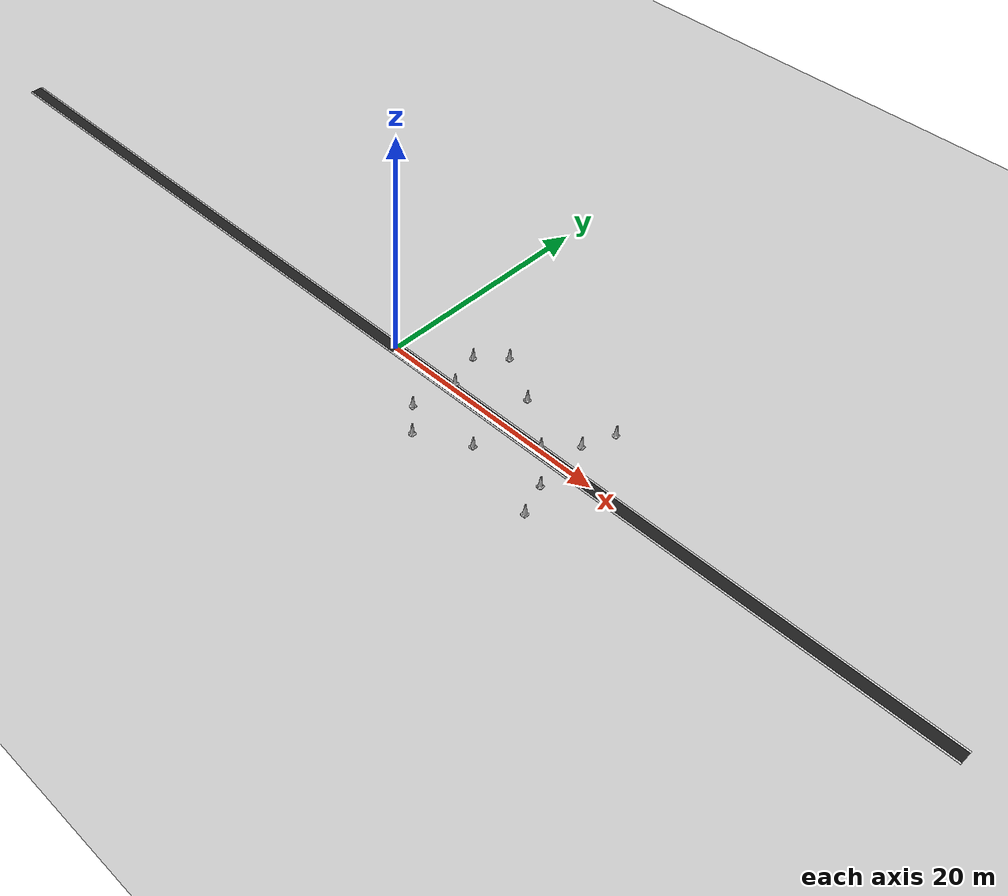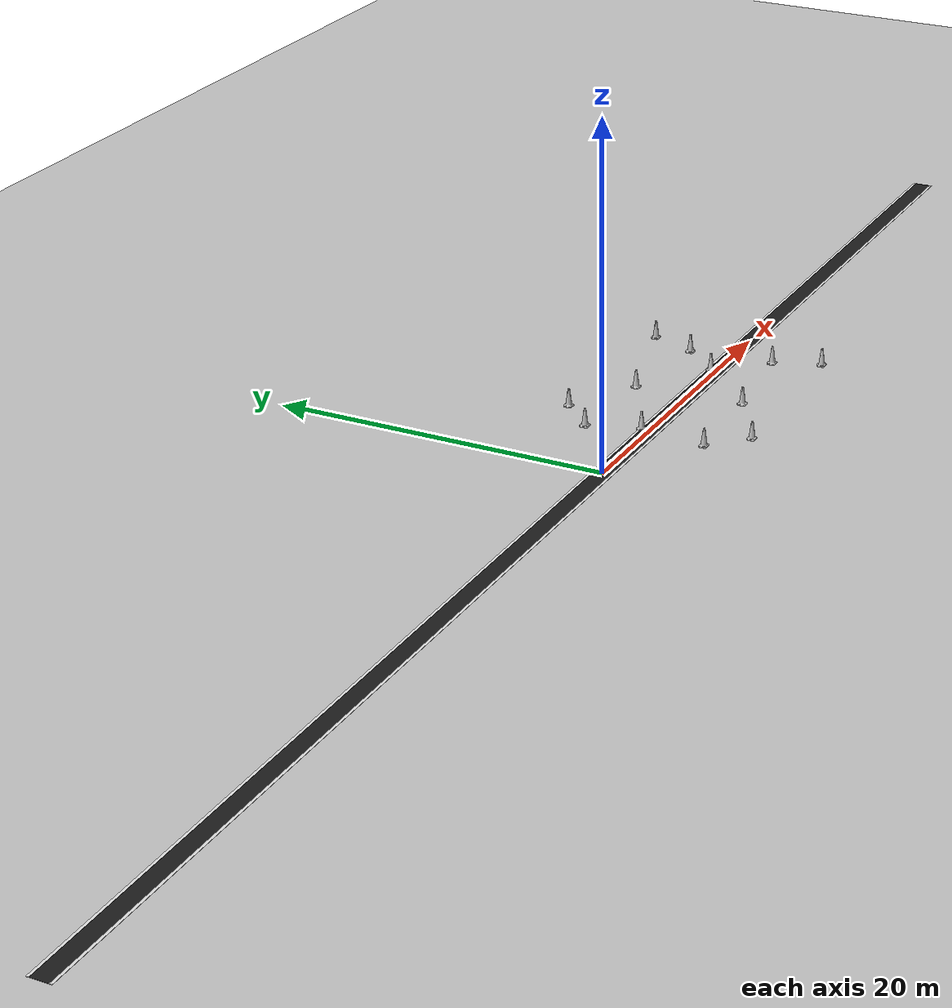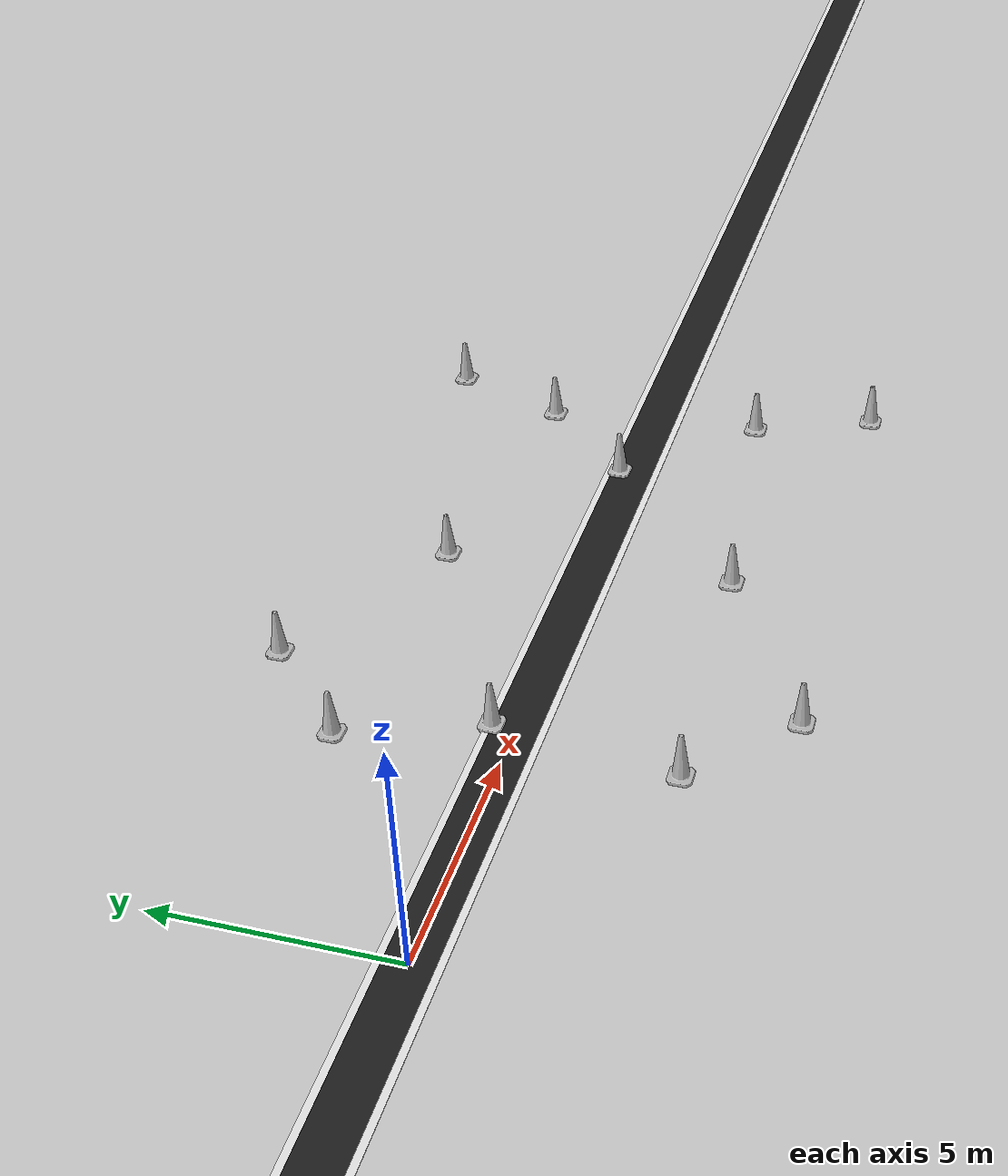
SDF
<sdf version="1.7">
 <world name="road_map">
  <light name="sun" type="directional">
   <pose>0 0 10 0 -0 0</pose>
   <diffuse>0.8 0.8 0.8 1</diffuse>
   <specular>0.2 0.2 0.2 1</specular>
   <attenuation>
    <range>1000</range>
    <constant>0.9</constant>
    <linear>0.01</linear>
    <quadratic>0.001</quadratic>
   </attenuation>
   <direction>-0.5 0.1 -0.9</direction>
  </light>
  <model name="ground_plane">
   <static>1</static>
   <link name="link">
    <collision name="collision">
     <geometry><plane><normal>0 0 1</normal><size>100 30</size></plane></geometry>
     <surface>
      <contact><collide_bitmask>65535</collide_bitmask></contact>
      <friction><ode><mu>100</mu><mu2>50</mu2></ode></friction>
     </surface>
    </collision>
    <visual name="visual">
     <cast_shadows>0</cast_shadows>
     <geometry><plane><normal>0 0 1</normal><size>100 30</size></plane></geometry>
     <material>
      <script><uri>file://media/materials/scripts/gazebo.material</uri><name>Gazebo/Grey</name></script>
     </material>
    </visual>
   </link>
  </model>
  <model name="road">
   <static>1</static>
   <link name="link">
    <collision name="collision"><geometry><box><size>100 1.12 0.01</size></box></geometry></collision>
    <visual name="visual">
     <geometry><box><size>100 1.12 0.01</size></box></geometry>
     <material>
      <script><uri>file://media/materials/scripts/gazebo.material</uri><name>Gazebo/Black</name></script>
     </material>
    </visual>
   </link>
   <pose>0 0 0.005 0 0 0</pose>
  </model>
  <model name="left_lane_marker">
   <static>1</static>
   <link name="link">
    <visual name="visual">
     <geometry><box><size>100 0.15 0.02</size></box></geometry>
     <material>
      <script><uri>file://media/materials/scripts/gazebo.material</uri><name>Gazebo/White</name></script>
     </material>
    </visual>
   </link>
   <pose>0 0.56 0.01 0 0 0</pose>
  </model>
  <model name="right_lane_marker">
   <static>1</static>
   <link name="link">
    <visual name="visual">
     <geometry><box><size>100 0.15 0.02</size></box></geometry>
     <material>
      <script><uri>file://media/materials/scripts/gazebo.material</uri><name>Gazebo/White</name></script>
     </material>
    </visual>
   </link>
   <pose>0 -0.56 0.01 0 0 0</pose>
  </model>
  <gravity>0 0 -9.8</gravity>
  <magnetic_field>6e-06 2.3e-05 -4.2e-05</magnetic_field>
  <atmosphere type="adiabatic"/>
  <physics type="ode">
   <max_step_size>0.001</max_step_size>
   <real_time_factor>1</real_time_factor>
   <real_time_update_rate>1000</real_time_update_rate>
  </physics>
  <scene><ambient>0.4 0.4 0.4 1</ambient><background>0.7 0.7 0.7 1</background><shadows>1</shadows></scene>
  <model name="obstacle_left_2">
   <pose>5.0 3.5 0.0 0 0 0</pose>
   <include><uri>model://construction_cone</uri></include>
  </model>
  <model name="obstacle_left_4">
   <pose>11.0 3.2 0.0 0 0 0</pose>
   <include><uri>model://construction_cone</uri></include>
  </model>
  <model name="obstacle_left_6">
   <pose>17.0 2.5 0.0 0 0 0</pose>
   <include><uri>model://construction_cone</uri></include>
  </model>
  <model name="obstacle_left_far_2">
   <pose>7.0 5.5 0.0 0 0 0</pose>
   <include><uri>model://construction_cone</uri></include>
  </model>
  <model name="obstacle_left_far_4">
   <pose>18.0 5.2 0.0 0 0 0</pose>
   <include><uri>model://construction_cone</uri></include>
  </model>
  <model name="obstacle_right_2">
   <pose>5.5 -3.5 0.0 0 0 0</pose>
   <include><uri>model://construction_cone</uri></include>
  </model>
  <model name="obstacle_right_4">
   <pose>11.5 -3.2 0.0 0 0 0</pose>
   <include><uri>model://construction_cone</uri></include>
  </model>
  <model name="obstacle_right_6">
   <pose>17.5 -2.5 0.0 0 0 0</pose>
   <include><uri>model://construction_cone</uri></include>
  </model>
  <model name="obstacle_right_far_2">
   <pose>7.5 -5.5 0.0 0 0 0</pose>
   <include><uri>model://construction_cone</uri></include>
  </model>
  <model name="obstacle_right_far_4">
   <pose>18.5 -5.2 0.0 0 0 0</pose>
   <include><uri>model://construction_cone</uri></include>
  </model>
  <model name="obstacle_road_1">
   <pose>6.0 0.5 0.0 0 0 0</pose>
   <include><uri>model://construction_cone</uri></include>
  </model>
  <model name="obstacle_road_3">
   <pose>15.0 0.3 0.0 0 0 0</pose>
   <include><uri>model://construction_cone</uri></include>
  </model>
 </world>
</sdf>

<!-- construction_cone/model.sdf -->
<sdf version="1.5">
  <model name="Construction Cone">
    <link name="link">
      <collision name="collision">
        <geometry>
          <mesh>
            <scale>10 10 10</scale>
            <uri>file://isr-testbed/construction_cone/meshes/construction_cone.dae</uri>
          </mesh>
        </geometry>
      </collision>
      <visual name="visual">
        <geometry>
          <mesh>
            <scale>10 10 10</scale>
            <uri>file://isr-testbed/construction_cone/meshes/construction_cone.dae</uri>
          </mesh>
        </geometry>
      </visual>
    </link>
  </model>
</sdf>
